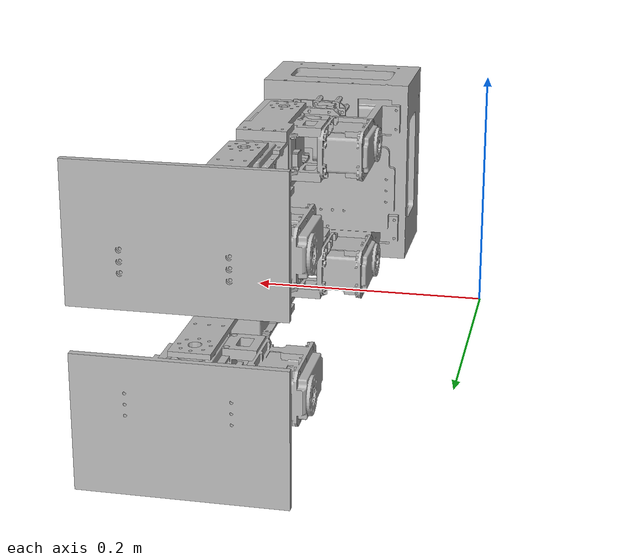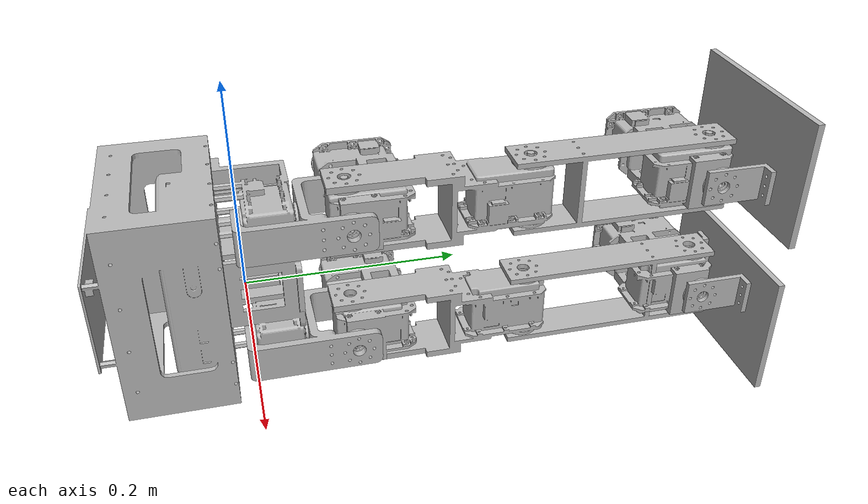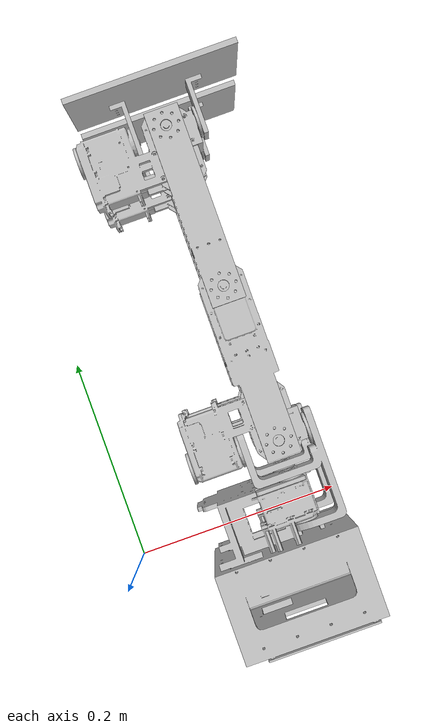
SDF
<sdf version='1.6'>
  <model name='kubot22'>
    <link name='base_link'>
      <pose frame=''>0 0 0 0 -0 0</pose>
      <inertial>
        <pose frame=''>0.134878 -0.03362 0.106921 0 -0 0</pose>
        <mass>1.17505</mass>
        <inertia>
          <ixx>0.201876</ixx>
          <ixy>0.00204035</ixy>
          <ixz>0.0325814</ixz>
          <iyy>0.207047</iyy>
          <iyz>0.0123682</iyz>
          <izz>0.00947106</izz>
        </inertia>
      </inertial>
      <collision name='base_link_collision'>
        <pose frame=''>0 0 0 0 -0 0</pose>
        <geometry>
          <mesh>
            <scale>1 1 1</scale>
            <uri>model://kubot22/meshes/base_link.STL</uri>
          </mesh>
        </geometry>
      </collision>
      <visual name='base_link_visual'>
        <pose frame=''>0 0 0 0 -0 0</pose>
        <geometry>
          <mesh>
            <scale>1 1 1</scale>
            <uri>model://kubot22/meshes/base_link.STL</uri>
          </mesh>
        </geometry>
      </visual>
    </link>
    <link name='L_P_Link'>
      <pose frame=''>0.159486 0.040474 0.15696 1.5708 -0 0</pose>
      <inertial>
        <pose frame=''>0.010194 -0 -0.000143 0 -0 0</pose>
        <mass>0.03344</mass>
        <inertia>
          <ixx>0.00426562</ixx>
          <ixy>-7.01e-06</ixy>
          <ixz>0.00020824</ixz>
          <iyy>0.00425856</iyy>
          <iyz>-0.00014673</iyz>
          <izz>3.217e-05</izz>
        </inertia>
      </inertial>
      <collision name='L_P_Link_collision'>
        <pose frame=''>0 0 0 0 -0 0</pose>
        <geometry>
          <mesh>
            <scale>1 1 1</scale>
            <uri>model://kubot22/meshes/L_P_Link.STL</uri>
          </mesh>
        </geometry>
      </collision>
      <visual name='L_P_Link_visual'>
        <pose frame=''>0 0 0 0 -0 0</pose>
        <geometry>
          <mesh>
            <scale>1 1 1</scale>
            <uri>model://kubot22/meshes/L_P_Link.STL</uri>
          </mesh>
        </geometry>
      </visual>
    </link>
    <joint name='LP' type='revolute'>
      <child>L_P_Link</child>
      <parent>base_link</parent>
      <axis>
        <xyz>0 -1 -0</xyz>
        <limit>
          <lower>0</lower>
          <upper>0</upper>
          <effort>0</effort>
          <velocity>0</velocity>
        </limit>
        <dynamics>
          <spring_reference>0</spring_reference>
          <spring_stiffness>0</spring_stiffness>
        </dynamics>
        <use_parent_model_frame>1</use_parent_model_frame>
      </axis>
    </joint>
    <link name='L_Pm_Link'>
      <pose frame=''>0.126966 0.074974 0.15696 1.5708 -0 0</pose>
      <inertial>
        <pose frame=''>0.007077 3.9e-05 -0.015156 0 -0 0</pose>
        <mass>0.26897</mass>
        <inertia>
          <ixx>0.0246862</ixx>
          <ixy>0.00012416</ixy>
          <ixz>0.00140937</ixz>
          <iyy>0.0243824</iyy>
          <iyz>0.00211844</iyz>
          <izz>0.00054743</izz>
        </inertia>
      </inertial>
      <collision name='L_Pm_Link_collision'>
        <pose frame=''>0 0 0 0 -0 0</pose>
        <geometry>
          <mesh>
            <scale>1 1 1</scale>
            <uri>model://kubot22/meshes/L_Pm_Link.STL</uri>
          </mesh>
        </geometry>
      </collision>
      <visual name='L_Pm_Link_visual'>
        <pose frame=''>0 0 0 0 -0 0</pose>
        <geometry>
          <mesh>
            <scale>1 1 1</scale>
            <uri>model://kubot22/meshes/L_Pm_Link.STL</uri>
          </mesh>
        </geometry>
      </visual>
    </link>
    <joint name='LPm' type='revolute'>
      <child>L_Pm_Link</child>
      <parent>L_P_Link</parent>
      <axis>
        <xyz>-1 0 0</xyz>
        <limit>
          <lower>0</lower>
          <upper>0</upper>
          <effort>0</effort>
          <velocity>0</velocity>
        </limit>
        <dynamics>
          <spring_reference>0</spring_reference>
          <spring_stiffness>0</spring_stiffness>
        </dynamics>
        <use_parent_model_frame>1</use_parent_model_frame>
      </axis>
    </joint>
    <link name='L_Pd_Link'>
      <pose frame=''>0.159666 0.074974 0.18046 1.5708 -0 0</pose>
      <inertial>
        <pose frame=''>2e-06 -0.023322 -0.098565 0 -0 0</pose>
        <mass>0.20444</mass>
        <inertia>
          <ixx>0.0132181</ixx>
          <ixy>2.84e-06</ixy>
          <ixz>0.00088862</ixz>
          <iyy>0.0133659</iyy>
          <iyz>4.082e-05</iyz>
          <izz>0.00018961</izz>
        </inertia>
      </inertial>
      <collision name='L_Pd_Link_collision'>
        <pose frame=''>0 0 0 0 -0 0</pose>
        <geometry>
          <mesh>
            <scale>1 1 1</scale>
            <uri>model://kubot22/meshes/L_Pd_Link.STL</uri>
          </mesh>
        </geometry>
      </collision>
      <visual name='L_Pd_Link_visual'>
        <pose frame=''>0 0 0 0 -0 0</pose>
        <geometry>
          <mesh>
            <scale>1 1 1</scale>
            <uri>model://kubot22/meshes/L_Pd_Link.STL</uri>
          </mesh>
        </geometry>
      </visual>
    </link>
    <joint name='LPd' type='revolute'>
      <child>L_Pd_Link</child>
      <parent>L_Pm_Link</parent>
      <axis>
        <xyz>0 0 -1</xyz>
        <limit>
          <lower>0</lower>
          <upper>0</upper>
          <effort>0</effort>
          <velocity>0</velocity>
        </limit>
        <dynamics>
          <spring_reference>0</spring_reference>
          <spring_stiffness>0</spring_stiffness>
        </dynamics>
        <use_parent_model_frame>1</use_parent_model_frame>
      </axis>
    </joint>
    <link name='L_K_Link'>
      <pose frame=''>0.159666 0.212974 0.18306 1.5708 -0 0</pose>
      <inertial>
        <pose frame=''>0 -0.0259 -0.066982 0 -0 0</pose>
        <mass>0.05316</mass>
        <inertia>
          <ixx>0.00077209</ixx>
          <ixy>-1.19e-06</ixy>
          <ixz>9.953e-05</ixz>
          <iyy>0.00081495</iyy>
          <iyz>-8.81e-06</iyz>
          <izz>5.25e-05</izz>
        </inertia>
      </inertial>
      <collision name='L_K_Link_collision'>
        <pose frame=''>0 0 0 0 -0 0</pose>
        <geometry>
          <mesh>
            <scale>1 1 1</scale>
            <uri>model://kubot22/meshes/L_K_Link.STL</uri>
          </mesh>
        </geometry>
      </collision>
      <visual name='L_K_Link_visual'>
        <pose frame=''>0 0 0 0 -0 0</pose>
        <geometry>
          <mesh>
            <scale>1 1 1</scale>
            <uri>model://kubot22/meshes/L_K_Link.STL</uri>
          </mesh>
        </geometry>
      </visual>
    </link>
    <joint name='LK' type='revolute'>
      <child>L_K_Link</child>
      <parent>L_Pd_Link</parent>
      <axis>
        <xyz>0 0 -1</xyz>
        <limit>
          <lower>0</lower>
          <upper>0</upper>
          <effort>0</effort>
          <velocity>0</velocity>
        </limit>
        <dynamics>
          <spring_reference>0</spring_reference>
          <spring_stiffness>0</spring_stiffness>
        </dynamics>
        <use_parent_model_frame>1</use_parent_model_frame>
      </axis>
    </joint>
    <link name='L_A_Link'>
      <pose frame=''>0.159666 0.355974 0.18306 1.5708 -0 0</pose>
      <inertial>
        <pose frame=''>-0.025967 -0.025948 0.01564 0 -0 0</pose>
        <mass>0.32297</mass>
        <inertia>
          <ixx>0.00147506</ixx>
          <ixy>0.00014786</ixy>
          <ixz>0.0002747</ixz>
          <iyy>0.00107445</iyy>
          <iyz>0.0004593</iyz>
          <izz>0.00067308</izz>
        </inertia>
      </inertial>
      <collision name='L_A_Link_collision'>
        <pose frame=''>0 0 0 0 -0 0</pose>
        <geometry>
          <mesh>
            <scale>1 1 1</scale>
            <uri>model://kubot22/meshes/L_A_Link.STL</uri>
          </mesh>
        </geometry>
      </collision>
      <visual name='L_A_Link_visual'>
        <pose frame=''>0 0 0 0 -0 0</pose>
        <geometry>
          <mesh>
            <scale>1 1 1</scale>
            <uri>model://kubot22/meshes/L_A_Link.STL</uri>
          </mesh>
        </geometry>
      </visual>
    </link>
    <joint name='LA' type='revolute'>
      <child>L_A_Link</child>
      <parent>L_K_Link</parent>
      <axis>
        <xyz>0 0 -1</xyz>
        <limit>
          <lower>0</lower>
          <upper>0</upper>
          <effort>0</effort>
          <velocity>0</velocity>
        </limit>
        <dynamics>
          <spring_reference>0</spring_reference>
          <spring_stiffness>0</spring_stiffness>
        </dynamics>
        <use_parent_model_frame>1</use_parent_model_frame>
      </axis>
    </joint>
    <link name='L_F_Link'>
      <pose frame=''>0.129466 0.355974 0.15706 1.5708 -0 0</pose>
      <inertial>
        <pose frame=''>0.031064 0.014394 -0.034382 0 -0 0</pose>
        <mass>0.05026</mass>
        <inertia>
          <ixx>9.006e-05</ixx>
          <ixy>-9e-08</ixy>
          <ixz>3.58e-06</ixz>
          <iyy>4.304e-05</iyy>
          <iyz>-1e-07</iyz>
          <izz>0.00011931</izz>
        </inertia>
      </inertial>
      <collision name='L_F_Link_collision'>
        <pose frame=''>0 0 0 0 -0 0</pose>
        <geometry>
          <mesh>
            <scale>1 1 1</scale>
            <uri>model://kubot22/meshes/L_F_Link.STL</uri>
          </mesh>
        </geometry>
      </collision>
      <visual name='L_F_Link_visual'>
        <pose frame=''>0 0 0 0 -0 0</pose>
        <geometry>
          <mesh>
            <scale>1 1 1</scale>
            <uri>model://kubot22/meshes/L_F_Link.STL</uri>
          </mesh>
        </geometry>
      </visual>
    </link>
    <joint name='LF' type='revolute'>
      <child>L_F_Link</child>
      <parent>L_A_Link</parent>
      <axis>
        <xyz>-1 0 0</xyz>
        <limit>
          <lower>0</lower>
          <upper>0</upper>
          <effort>0</effort>
          <velocity>0</velocity>
        </limit>
        <dynamics>
          <spring_reference>0</spring_reference>
          <spring_stiffness>0</spring_stiffness>
        </dynamics>
        <use_parent_model_frame>1</use_parent_model_frame>
      </axis>
    </joint>
    <link name='R_P_Link'>
      <pose frame=''>0.159486 0.040474 0.05696 1.5708 -0 0</pose>
      <inertial>
        <pose frame=''>0.010194 -0 -0.000143 0 -0 0</pose>
        <mass>0.03344</mass>
        <inertia>
          <ixx>0.00426562</ixx>
          <ixy>-4.705e-05</ixy>
          <ixz>0.00139703</ixz>
          <iyy>0.00471011</iyy>
          <iyz>-0.00014673</iyz>
          <izz>0.00048372</izz>
        </inertia>
      </inertial>
      <collision name='R_P_Link_collision'>
        <pose frame=''>0 0 0 0 -0 0</pose>
        <geometry>
          <mesh>
            <scale>1 1 1</scale>
            <uri>model://kubot22/meshes/R_P_Link.STL</uri>
          </mesh>
        </geometry>
      </collision>
      <visual name='R_P_Link_visual'>
        <pose frame=''>0 0 0 0 -0 0</pose>
        <geometry>
          <mesh>
            <scale>1 1 1</scale>
            <uri>model://kubot22/meshes/R_P_Link.STL</uri>
          </mesh>
        </geometry>
      </visual>
    </link>
    <joint name='RP' type='revolute'>
      <child>R_P_Link</child>
      <parent>base_link</parent>
      <axis>
        <xyz>0 -1 -0</xyz>
        <limit>
          <lower>0</lower>
          <upper>0</upper>
          <effort>0</effort>
          <velocity>0</velocity>
        </limit>
        <dynamics>
          <spring_reference>0</spring_reference>
          <spring_stiffness>0</spring_stiffness>
        </dynamics>
        <use_parent_model_frame>1</use_parent_model_frame>
      </axis>
    </joint>
    <link name='R_Pm_Link'>
      <pose frame=''>0.126966 0.074974 0.05696 1.5708 -0 0</pose>
      <inertial>
        <pose frame=''>0.007077 -3.9e-05 -0.015156 0 -0 0</pose>
        <mass>0.26897</mass>
        <inertia>
          <ixx>0.0246862</ixx>
          <ixy>0.00083301</ixy>
          <ixz>0.00948308</ixz>
          <iyy>0.0280169</iyy>
          <iyz>0.00211844</iyz>
          <izz>0.00418201</izz>
        </inertia>
      </inertial>
      <collision name='R_Pm_Link_collision'>
        <pose frame=''>0 0 0 0 -0 0</pose>
        <geometry>
          <mesh>
            <scale>1 1 1</scale>
            <uri>model://kubot22/meshes/R_Pm_Link.STL</uri>
          </mesh>
        </geometry>
      </collision>
      <visual name='R_Pm_Link_visual'>
        <pose frame=''>0 0 0 0 -0 0</pose>
        <geometry>
          <mesh>
            <scale>1 1 1</scale>
            <uri>model://kubot22/meshes/R_Pm_Link.STL</uri>
          </mesh>
        </geometry>
      </visual>
    </link>
    <joint name='RPm' type='revolute'>
      <child>R_Pm_Link</child>
      <parent>R_P_Link</parent>
      <axis>
        <xyz>-1 0 0</xyz>
        <limit>
          <lower>0</lower>
          <upper>0</upper>
          <effort>0</effort>
          <velocity>0</velocity>
        </limit>
        <dynamics>
          <spring_reference>0</spring_reference>
          <spring_stiffness>0</spring_stiffness>
        </dynamics>
        <use_parent_model_frame>1</use_parent_model_frame>
      </axis>
    </joint>
    <link name='R_Pd_Link'>
      <pose frame=''>0.159666 0.074974 0.03346 1.5708 -0 0</pose>
      <inertial>
        <pose frame=''>-2e-06 0.023322 -0.098565 0 -0 0</pose>
        <mass>0.20444</mass>
        <inertia>
          <ixx>0.0133021</ixx>
          <ixy>1.927e-05</ixy>
          <ixz>0.00603142</ixz>
          <iyy>0.0162146</iyy>
          <iyz>4.106e-05</iyz>
          <izz>0.0029526</izz>
        </inertia>
      </inertial>
      <collision name='R_Pd_Link_collision'>
        <pose frame=''>0 0 0 0 -0 0</pose>
        <geometry>
          <mesh>
            <scale>1 1 1</scale>
            <uri>model://kubot22/meshes/R_Pd_Link.STL</uri>
          </mesh>
        </geometry>
      </collision>
      <visual name='R_Pd_Link_visual'>
        <pose frame=''>0 0 0 0 -0 0</pose>
        <geometry>
          <mesh>
            <scale>1 1 1</scale>
            <uri>model://kubot22/meshes/R_Pd_Link.STL</uri>
          </mesh>
        </geometry>
      </visual>
    </link>
    <joint name='RPd' type='revolute'>
      <child>R_Pd_Link</child>
      <parent>R_Pm_Link</parent>
      <axis>
        <xyz>0 -0 1</xyz>
        <limit>
          <lower>0</lower>
          <upper>0</upper>
          <effort>0</effort>
          <velocity>0</velocity>
        </limit>
        <dynamics>
          <spring_reference>0</spring_reference>
          <spring_stiffness>0</spring_stiffness>
        </dynamics>
        <use_parent_model_frame>1</use_parent_model_frame>
      </axis>
    </joint>
    <link name='R_K_Link'>
      <pose frame=''>0.159666 0.212974 0.03086 1.5708 -0 0</pose>
      <inertial>
        <pose frame=''>-0 0.0259 -0.076018 0 -0 0</pose>
        <mass>0.05316</mass>
        <inertia>
          <ixx>0.00077209</ixx>
          <ixy>-8.45e-06</ixy>
          <ixz>0.00070724</ixz>
          <iyy>0.00153701</iyy>
          <iyz>-8.81e-06</iyz>
          <izz>0.00077456</izz>
        </inertia>
      </inertial>
      <collision name='R_K_Link_collision'>
        <pose frame=''>0 0 0 0 -0 0</pose>
        <geometry>
          <mesh>
            <scale>1 1 1</scale>
            <uri>model://kubot22/meshes/R_K_Link.STL</uri>
          </mesh>
        </geometry>
      </collision>
      <visual name='R_K_Link_visual'>
        <pose frame=''>0 0 0 0 -0 0</pose>
        <geometry>
          <mesh>
            <scale>1 1 1</scale>
            <uri>model://kubot22/meshes/R_K_Link.STL</uri>
          </mesh>
        </geometry>
      </visual>
    </link>
    <joint name='RK' type='revolute'>
      <child>R_K_Link</child>
      <parent>R_Pd_Link</parent>
      <axis>
        <xyz>0 -0 1</xyz>
        <limit>
          <lower>0</lower>
          <upper>0</upper>
          <effort>0</effort>
          <velocity>0</velocity>
        </limit>
        <dynamics>
          <spring_reference>0</spring_reference>
          <spring_stiffness>0</spring_stiffness>
        </dynamics>
        <use_parent_model_frame>1</use_parent_model_frame>
      </axis>
    </joint>
    <link name='R_A_Link'>
      <pose frame=''>0.159666 0.355974 0.03086 1.5708 -0 0</pose>
      <inertial>
        <pose frame=''>-0.02597 0.025944 0.01564 0 -0 0</pose>
        <mass>0.32297</mass>
        <inertia>
          <ixx>0.00147506</ixx>
          <ixy>0.00104362</ixy>
          <ixz>0.00194352</ixz>
          <iyy>0.00546325</iyy>
          <iyz>0.00045935</iyz>
          <izz>0.00506188</izz>
        </inertia>
      </inertial>
      <collision name='R_A_Link_collision'>
        <pose frame=''>0 0 0 0 -0 0</pose>
        <geometry>
          <mesh>
            <scale>1 1 1</scale>
            <uri>model://kubot22/meshes/R_A_Link.STL</uri>
          </mesh>
        </geometry>
      </collision>
      <visual name='R_A_Link_visual'>
        <pose frame=''>0 0 0 0 -0 0</pose>
        <geometry>
          <mesh>
            <scale>1 1 1</scale>
            <uri>model://kubot22/meshes/R_A_Link.STL</uri>
          </mesh>
        </geometry>
      </visual>
    </link>
    <joint name='RA' type='revolute'>
      <child>R_A_Link</child>
      <parent>R_K_Link</parent>
      <axis>
        <xyz>0 -0 1</xyz>
        <limit>
          <lower>0</lower>
          <upper>0</upper>
          <effort>0</effort>
          <velocity>0</velocity>
        </limit>
        <dynamics>
          <spring_reference>0</spring_reference>
          <spring_stiffness>0</spring_stiffness>
        </dynamics>
        <use_parent_model_frame>1</use_parent_model_frame>
      </axis>
    </joint>
    <link name='R_F_Link'>
      <pose frame=''>0.129466 0.355974 0.05686 1.5708 -0 0</pose>
      <inertial>
        <pose frame=''>0.031064 -0.014388 -0.034388 0 -0 0</pose>
        <mass>0.05026</mass>
        <inertia>
          <ixx>9.005e-05</ixx>
          <ixy>-6.1e-07</ixy>
          <ixz>1.208e-05</ixz>
          <iyy>0.00089976</iyy>
          <iyz>-1e-07</iyz>
          <izz>0.00097602</izz>
        </inertia>
      </inertial>
      <collision name='R_F_Link_collision'>
        <pose frame=''>0 0 0 0 -0 0</pose>
        <geometry>
          <mesh>
            <scale>1 1 1</scale>
            <uri>model://kubot22/meshes/R_F_Link.STL</uri>
          </mesh>
        </geometry>
      </collision>
      <visual name='R_F_Link_visual'>
        <pose frame=''>0 0 0 0 -0 0</pose>
        <geometry>
          <mesh>
            <scale>1 1 1</scale>
            <uri>model://kubot22/meshes/R_F_Link.STL</uri>
          </mesh>
        </geometry>
      </visual>
    </link>
    <joint name='RF' type='revolute'>
      <child>R_F_Link</child>
      <parent>R_A_Link</parent>
      <axis>
        <xyz>-1 0 0</xyz>
        <limit>
          <lower>0</lower>
          <upper>0</upper>
          <effort>0</effort>
          <velocity>0</velocity>
        </limit>
        <dynamics>
          <spring_reference>0</spring_reference>
          <spring_stiffness>0</spring_stiffness>
        </dynamics>
        <use_parent_model_frame>1</use_parent_model_frame>
      </axis>
    </joint>
  </model>
</sdf>
